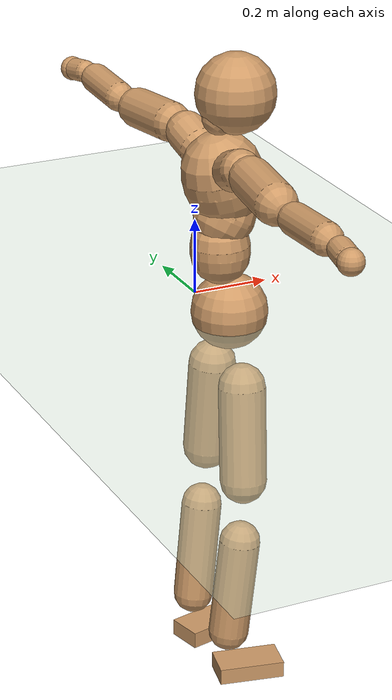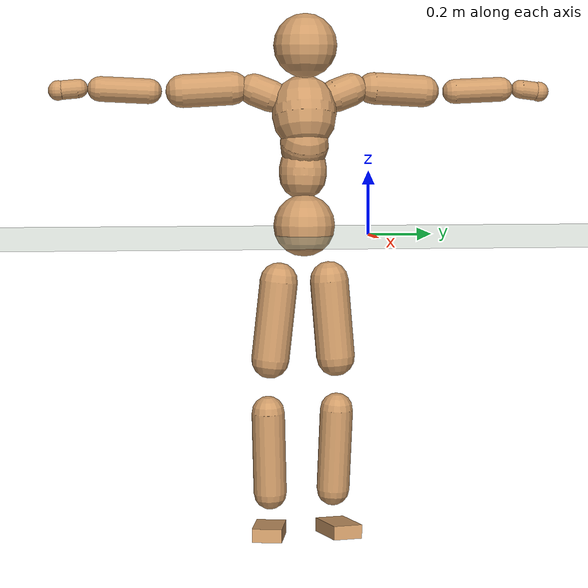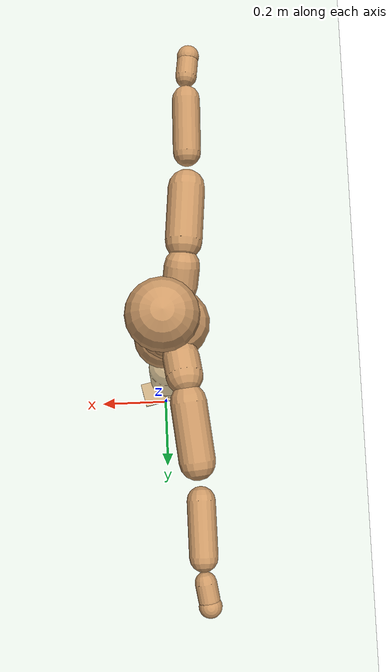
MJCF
<mujoco model="humanoid">
  <compiler coordinate="local" angle="radian"/>
  <default>
    <joint damping="0.0" armature="0.01" stiffness="0.0" limited="true"/>
    <geom conaffinity="1" condim="3" contype="7" margin="0.001" rgba="0.8 0.6 .4 1"/>
  </default>
  <asset>
    <texture type="skybox" builtin="gradient" rgb1=".4 .5 .6" rgb2="0 0 0" width="100" height="100"/>
    <texture builtin="flat" height="1278" mark="cross" markrgb="1 1 1" name="texgeom" random="0.01" rgb1="0.8 0.6 0.4" rgb2="0.8 0.6 0.4" type="cube" width="127"/>
    <texture builtin="checker" height="100" name="texplane" rgb1="0 0 0" rgb2="0.8 0.8 0.8" type="2d" width="100"/>
    <material name="MatPlane" reflectance="0.5" shininess="1" specular="1" texrepeat="60 60" texture="texplane"/>
    <material name="geom" texture="texgeom" texuniform="true"/>
  </asset>
  <worldbody>
    <light cutoff="100" diffuse="1 1 1" dir="-0 0 -1.3" directional="true" exponent="1" pos="0 0 1.3" specular=".1 .1 .1"/>
    <geom conaffinity="1" condim="3" name="floor" pos="0 0 0" rgba="0.8 0.9 0.8 1" size="100 100 .2" type="plane" material="MatPlane"/>
    <body name="Pelvis" pos="-0.0016 -0.2029 0.0297">
      <freejoint name="Pelvis"/>
      <geom type="sphere" contype="1" conaffinity="1" density="500" size="0.0973" pos="0.0000 0.0000 0.0000" name="Pelvis"/>
      <body name="L_Hip" pos="-0.0057 0.0735 -0.0931">
        <joint name="L_Hip_x" type="hinge" pos="0 0 0" axis="1 0 0" stiffness="800" damping="80" armature="0.02" range="-180.0000 180.0000"/>
        <joint name="L_Hip_y" type="hinge" pos="0 0 0" axis="0 1 0" stiffness="800" damping="80" armature="0.02" range="-180.0000 180.0000"/>
        <joint name="L_Hip_z" type="hinge" pos="0 0 0" axis="0 0 1" stiffness="800" damping="80" armature="0.02" range="-180.0000 180.0000"/>
        <geom type="capsule" contype="1" conaffinity="1" density="500" fromto="-0.0020 0.0071 -0.0811 -0.0080 0.0283 -0.3244" size="0.0607" name="L_Hip"/>
        <body name="L_Knee" pos="-0.01 0.0354 -0.4056">
          <joint name="L_Knee_x" type="hinge" pos="0 0 0" axis="1 0 0" stiffness="800" damping="80" armature="0.02" range="-180.0000 180.0000"/>
          <joint name="L_Knee_y" type="hinge" pos="0 0 0" axis="0 1 0" stiffness="800" damping="80" armature="0.02" range="-180.0000 180.0000"/>
          <joint name="L_Knee_z" type="hinge" pos="0 0 0" axis="0 0 1" stiffness="800" damping="80" armature="0.02" range="-180.0000 180.0000"/>
          <geom type="capsule" contype="1" conaffinity="1" density="500" fromto="-0.0092 -0.0023 -0.0867 -0.0369 -0.0092 -0.3470" size="0.052" name="L_Knee"/>
          <body name="L_Ankle" pos="-0.0461 -0.0115 -0.4337">
            <joint name="L_Ankle_x" type="hinge" pos="0 0 0" axis="1 0 0" stiffness="800" damping="80" armature="0.02" range="-180.0000 180.0000"/>
            <joint name="L_Ankle_y" type="hinge" pos="0 0 0" axis="0 1 0" stiffness="800" damping="80" armature="0.02" range="-180.0000 180.0000"/>
            <joint name="L_Ankle_z" type="hinge" pos="0 0 0" axis="0 0 1" stiffness="800" damping="80" armature="0.02" range="-180.0000 180.0000"/>
            <geom type="box" contype="1" conaffinity="1" density="500" pos="0.0588 0.0134 -0.0306" size="0.082 0.0466 0.0218" quat="0.9937 0.0000 0.0000 0.1117" name="L_Ankle"/>
            <body name="L_Toe" pos="0.1176 0.0268 -0.0612">
              <joint name="L_Toe_x" type="hinge" pos="0 0 0" axis="1 0 0" stiffness="500" damping="50" armature="0.02" range="-180.0000 180.0000"/>
              <joint name="L_Toe_y" type="hinge" pos="0 0 0" axis="0 1 0" stiffness="500" damping="50" armature="0.02" range="-180.0000 180.0000"/>
              <joint name="L_Toe_z" type="hinge" pos="0 0 0" axis="0 0 1" stiffness="500" damping="50" armature="0.02" range="-180.0000 180.0000"/>
              <geom type="box" contype="1" conaffinity="1" density="500" pos="0.0000 0.0000 0.0301" size="0.001 0.0023 0.0011" quat="0.9930 0.0000 0.0000 0.1178" name="L_Toe"/>
            </body>
          </body>
        </body>
      </body>
      <body name="R_Hip" pos="-0.0011 -0.0715 -0.0934">
        <joint name="R_Hip_x" type="hinge" pos="0 0 0" axis="1 0 0" stiffness="800" damping="80" armature="0.02" range="-180.0000 180.0000"/>
        <joint name="R_Hip_y" type="hinge" pos="0 0 0" axis="0 1 0" stiffness="800" damping="80" armature="0.02" range="-180.0000 180.0000"/>
        <joint name="R_Hip_z" type="hinge" pos="0 0 0" axis="0 0 1" stiffness="800" damping="80" armature="0.02" range="-180.0000 180.0000"/>
        <geom type="capsule" contype="1" conaffinity="1" density="500" fromto="-0.0024 -0.0087 -0.0824 -0.0095 -0.0348 -0.3295" size="0.0598" name="R_Hip"/>
        <body name="R_Knee" pos="-0.0119 -0.0435 -0.4119">
          <joint name="R_Knee_x" type="hinge" pos="0 0 0" axis="1 0 0" stiffness="800" damping="80" armature="0.02" range="-180.0000 180.0000"/>
          <joint name="R_Knee_y" type="hinge" pos="0 0 0" axis="0 1 0" stiffness="800" damping="80" armature="0.02" range="-180.0000 180.0000"/>
          <joint name="R_Knee_z" type="hinge" pos="0 0 0" axis="0 0 1" stiffness="800" damping="80" armature="0.02" range="-180.0000 180.0000"/>
          <geom type="capsule" contype="1" conaffinity="1" density="500" fromto="-0.0086 0.0030 -0.0869 -0.0344 0.0121 -0.3477" size="0.0523" name="R_Knee"/>
          <body name="R_Ankle" pos="-0.043 0.0151 -0.4347">
            <joint name="R_Ankle_x" type="hinge" pos="0 0 0" axis="1 0 0" stiffness="800" damping="80" armature="0.02" range="-180.0000 180.0000"/>
            <joint name="R_Ankle_y" type="hinge" pos="0 0 0" axis="0 1 0" stiffness="800" damping="80" armature="0.02" range="-180.0000 180.0000"/>
            <joint name="R_Ankle_z" type="hinge" pos="0 0 0" axis="0 0 1" stiffness="800" damping="80" armature="0.02" range="-180.0000 180.0000"/>
            <geom type="box" contype="1" conaffinity="1" density="500" pos="0.0608 -0.0124 -0.0262" size="0.0847 0.0469 0.0213" quat="0.9949 0.0000 0.0000 -0.1004" name="R_Ankle"/>
            <body name="R_Toe" pos="0.1216 -0.0248 -0.0524">
              <joint name="R_Toe_x" type="hinge" pos="0 0 0" axis="1 0 0" stiffness="500" damping="50" armature="0.02" range="-180.0000 180.0000"/>
              <joint name="R_Toe_y" type="hinge" pos="0 0 0" axis="0 1 0" stiffness="500" damping="50" armature="0.02" range="-180.0000 180.0000"/>
              <joint name="R_Toe_z" type="hinge" pos="0 0 0" axis="0 0 1" stiffness="500" damping="50" armature="0.02" range="-180.0000 180.0000"/>
              <geom type="box" contype="1" conaffinity="1" density="500" pos="0.0000 0.0000 0.0284" size="0.0009 0.0023 0.0012" quat="0.9958 0.0000 0.0000 -0.0911" name="R_Toe"/>
            </body>
          </body>
        </body>
      </body>
      <body name="Torso" pos="-0.0259 -0.0027 0.107">
        <joint name="Torso_x" type="hinge" pos="0 0 0" axis="1 0 0" stiffness="1000" damping="100" armature="0.02" range="-180.0000 180.0000"/>
        <joint name="Torso_y" type="hinge" pos="0 0 0" axis="0 1 0" stiffness="1000" damping="100" armature="0.02" range="-180.0000 180.0000"/>
        <joint name="Torso_z" type="hinge" pos="0 0 0" axis="0 0 1" stiffness="1000" damping="100" armature="0.02" range="-180.0000 180.0000"/>
        <geom type="capsule" contype="1" conaffinity="1" density="500" fromto="-0.0009 0.0024 0.0733 -0.0006 0.0016 0.0489" size="0.0751" name="Torso"/>
        <body name="Spine" pos="-0.0015 0.004 0.1222">
          <joint name="Spine_x" type="hinge" pos="0 0 0" axis="1 0 0" stiffness="1000" damping="100" armature="0.02" range="-180.0000 180.0000"/>
          <joint name="Spine_y" type="hinge" pos="0 0 0" axis="0 1 0" stiffness="1000" damping="100" armature="0.02" range="-180.0000 180.0000"/>
          <joint name="Spine_z" type="hinge" pos="0 0 0" axis="0 0 1" stiffness="1000" damping="100" armature="0.02" range="-180.0000 180.0000"/>
          <geom type="capsule" contype="1" conaffinity="1" density="500" fromto="0.0173 0.0012 0.0299 0.0115 0.0008 0.0199" size="0.0766" name="Spine"/>
          <body name="Chest" pos="0.0289 0.0019 0.0498">
            <joint name="Chest_x" type="hinge" pos="0 0 0" axis="1 0 0" stiffness="1000" damping="100" armature="0.02" range="-180.0000 180.0000"/>
            <joint name="Chest_y" type="hinge" pos="0 0 0" axis="0 1 0" stiffness="1000" damping="100" armature="0.02" range="-180.0000 180.0000"/>
            <joint name="Chest_z" type="hinge" pos="0 0 0" axis="0 0 1" stiffness="1000" damping="100" armature="0.02" range="-180.0000 180.0000"/>
            <geom type="capsule" contype="1" conaffinity="1" density="500" fromto="-0.0240 -0.0012 0.0902 -0.0160 -0.0008 0.0601" size="0.1011" name="Chest"/>
            <body name="Neck" pos="-0.0432 -0.0039 0.2133">
              <joint name="Neck_x" type="hinge" pos="0 0 0" axis="1 0 0" stiffness="500" damping="50" armature="0.02" range="-180.0000 180.0000"/>
              <joint name="Neck_y" type="hinge" pos="0 0 0" axis="0 1 0" stiffness="500" damping="50" armature="0.02" range="-180.0000 180.0000"/>
              <joint name="Neck_z" type="hinge" pos="0 0 0" axis="0 0 1" stiffness="500" damping="50" armature="0.02" range="-180.0000 180.0000"/>
              <geom type="capsule" contype="1" conaffinity="1" density="500" fromto="0.0111 0.0004 0.0138 0.0445 0.0017 0.0551" size="0.043" name="Neck"/>
              <body name="Head" pos="0.0556 0.0022 0.0689">
                <joint name="Head_x" type="hinge" pos="0 0 0" axis="1 0 0" stiffness="500" damping="50" armature="0.02" range="-180.0000 180.0000"/>
                <joint name="Head_y" type="hinge" pos="0 0 0" axis="0 1 0" stiffness="500" damping="50" armature="0.02" range="-180.0000 180.0000"/>
                <joint name="Head_z" type="hinge" pos="0 0 0" axis="0 0 1" stiffness="500" damping="50" armature="0.02" range="-180.0000 180.0000"/>
                <geom type="sphere" contype="1" conaffinity="1" density="500" size="0.1004" pos="0.0000 0.0000 0.0000" name="Head"/>
              </body>
            </body>
            <body name="L_Thorax" pos="-0.0363 0.082 0.1197">
              <joint name="L_Thorax_x" type="hinge" pos="0 0 0" axis="1 0 0" stiffness="500" damping="50" armature="0.02" range="-180.0000 180.0000"/>
              <joint name="L_Thorax_y" type="hinge" pos="0 0 0" axis="0 1 0" stiffness="500" damping="50" armature="0.02" range="-180.0000 180.0000"/>
              <joint name="L_Thorax_z" type="hinge" pos="0 0 0" axis="0 0 1" stiffness="500" damping="50" armature="0.02" range="-180.0000 180.0000"/>
              <geom type="capsule" contype="1" conaffinity="1" density="500" fromto="-0.0022 0.0175 0.0067 -0.0090 0.0698 0.0269" size="0.052" name="L_Thorax"/>
              <body name="L_Shoulder" pos="-0.0112 0.0873 0.0337">
                <joint name="L_Shoulder_x" type="hinge" pos="0 0 0" axis="1 0 0" stiffness="500" damping="50" armature="0.02" range="-720.0000 720.0000"/>
                <joint name="L_Shoulder_y" type="hinge" pos="0 0 0" axis="0 1 0" stiffness="500" damping="50" armature="0.02" range="-720.0000 720.0000"/>
                <joint name="L_Shoulder_z" type="hinge" pos="0 0 0" axis="0 0 1" stiffness="500" damping="50" armature="0.02" range="-720.0000 720.0000"/>
                <geom type="capsule" contype="1" conaffinity="1" density="500" fromto="-0.0060 0.0542 -0.0028 -0.0242 0.2167 -0.0114" size="0.0509" name="L_Shoulder"/>
                <body name="L_Elbow" pos="-0.0302 0.2708 -0.0142">
                  <joint name="L_Elbow_x" type="hinge" pos="0 0 0" axis="1 0 0" stiffness="500" damping="50" armature="0.02" range="-720.0000 720.0000"/>
                  <joint name="L_Elbow_y" type="hinge" pos="0 0 0" axis="0 1 0" stiffness="500" damping="50" armature="0.02" range="-720.0000 720.0000"/>
                  <joint name="L_Elbow_z" type="hinge" pos="0 0 0" axis="0 0 1" stiffness="500" damping="50" armature="0.02" range="-720.0000 720.0000"/>
                  <geom type="capsule" contype="1" conaffinity="1" density="500" fromto="-0.0003 0.0498 0.0023 -0.0010 0.1992 0.0093" size="0.0389" name="L_Elbow"/>
                  <body name="L_Wrist" pos="-0.0013 0.249 0.0116">
                    <joint name="L_Wrist_x" type="hinge" pos="0 0 0" axis="1 0 0" stiffness="300" damping="30" armature="0.02" range="-180.0000 180.0000"/>
                    <joint name="L_Wrist_y" type="hinge" pos="0 0 0" axis="0 1 0" stiffness="300" damping="30" armature="0.02" range="-180.0000 180.0000"/>
                    <joint name="L_Wrist_z" type="hinge" pos="0 0 0" axis="0 0 1" stiffness="300" damping="30" armature="0.02" range="-180.0000 180.0000"/>
                    <geom type="capsule" contype="1" conaffinity="1" density="500" fromto="-0.0026 0.0157 -0.0019 -0.0105 0.0628 -0.0077" size="0.0296" name="L_Wrist"/>
                    <body name="L_Hand" pos="-0.0131 0.0785 -0.0096">
                      <joint name="L_Hand_x" type="hinge" pos="0 0 0" axis="1 0 0" stiffness="300" damping="30" armature="0.02" range="-180.0000 180.0000"/>
                      <joint name="L_Hand_y" type="hinge" pos="0 0 0" axis="0 1 0" stiffness="300" damping="30" armature="0.02" range="-180.0000 180.0000"/>
                      <joint name="L_Hand_z" type="hinge" pos="0 0 0" axis="0 0 1" stiffness="300" damping="30" armature="0.02" range="-180.0000 180.0000"/>
                      <geom type="sphere" contype="1" conaffinity="1" density="500" size="0.0316" pos="0.0000 0.0000 0.0000" name="L_Hand"/>
                    </body>
                  </body>
                </body>
              </body>
            </body>
            <body name="R_Thorax" pos="-0.0403 -0.0838 0.1179">
              <joint name="R_Thorax_x" type="hinge" pos="0 0 0" axis="1 0 0" stiffness="500" damping="50" armature="0.02" range="-180.0000 180.0000"/>
              <joint name="R_Thorax_y" type="hinge" pos="0 0 0" axis="0 1 0" stiffness="500" damping="50" armature="0.02" range="-180.0000 180.0000"/>
              <joint name="R_Thorax_z" type="hinge" pos="0 0 0" axis="0 0 1" stiffness="500" damping="50" armature="0.02" range="-180.0000 180.0000"/>
              <geom type="capsule" contype="1" conaffinity="1" density="500" fromto="-0.0024 -0.0177 0.0070 -0.0096 -0.0709 0.0281" size="0.0506" name="R_Thorax"/>
              <body name="R_Shoulder" pos="-0.012 -0.0886 0.0351">
                <joint name="R_Shoulder_x" type="hinge" pos="0 0 0" axis="1 0 0" stiffness="500" damping="50" armature="0.02" range="-720.0000 720.0000"/>
                <joint name="R_Shoulder_y" type="hinge" pos="0 0 0" axis="0 1 0" stiffness="500" damping="50" armature="0.02" range="-720.0000 720.0000"/>
                <joint name="R_Shoulder_z" type="hinge" pos="0 0 0" axis="0 0 1" stiffness="500" damping="50" armature="0.02" range="-720.0000 720.0000"/>
                <geom type="capsule" contype="1" conaffinity="1" density="500" fromto="-0.0047 -0.0517 -0.0030 -0.0188 -0.2068 -0.0121" size="0.0526" name="R_Shoulder"/>
                <body name="R_Elbow" pos="-0.0235 -0.2585 -0.0151">
                  <joint name="R_Elbow_x" type="hinge" pos="0 0 0" axis="1 0 0" stiffness="500" damping="50" armature="0.02" range="-720.0000 720.0000"/>
                  <joint name="R_Elbow_y" type="hinge" pos="0 0 0" axis="0 1 0" stiffness="500" damping="50" armature="0.02" range="-720.0000 720.0000"/>
                  <joint name="R_Elbow_z" type="hinge" pos="0 0 0" axis="0 0 1" stiffness="500" damping="50" armature="0.02" range="-720.0000 720.0000"/>
                  <geom type="capsule" contype="1" conaffinity="1" density="500" fromto="-0.0008 -0.0512 0.0024 -0.0033 -0.2049 0.0095" size="0.0395" name="R_Elbow"/>
                  <body name="R_Wrist" pos="-0.0041 -0.2562 0.0119">
                    <joint name="R_Wrist_x" type="hinge" pos="0 0 0" axis="1 0 0" stiffness="300" damping="30" armature="0.02" range="-180.0000 180.0000"/>
                    <joint name="R_Wrist_y" type="hinge" pos="0 0 0" axis="0 1 0" stiffness="300" damping="30" armature="0.02" range="-180.0000 180.0000"/>
                    <joint name="R_Wrist_z" type="hinge" pos="0 0 0" axis="0 0 1" stiffness="300" damping="30" armature="0.02" range="-180.0000 180.0000"/>
                    <geom type="capsule" contype="1" conaffinity="1" density="500" fromto="-0.0020 -0.0157 -0.0014 -0.0081 -0.0626 -0.0057" size="0.0302" name="R_Wrist"/>
                    <body name="R_Hand" pos="-0.0101 -0.0783 -0.0071">
                      <joint name="R_Hand_x" type="hinge" pos="0 0 0" axis="1 0 0" stiffness="300" damping="30" armature="0.02" range="-180.0000 180.0000"/>
                      <joint name="R_Hand_y" type="hinge" pos="0 0 0" axis="0 1 0" stiffness="300" damping="30" armature="0.02" range="-180.0000 180.0000"/>
                      <joint name="R_Hand_z" type="hinge" pos="0 0 0" axis="0 0 1" stiffness="300" damping="30" armature="0.02" range="-180.0000 180.0000"/>
                      <geom type="sphere" contype="1" conaffinity="1" density="500" size="0.0316" pos="0.0000 0.0000 0.0000" name="R_Hand"/>
                    </body>
                  </body>
                </body>
              </body>
            </body>
          </body>
        </body>
      </body>
    </body>
  </worldbody>
  <actuator>
    <motor name="L_Hip_x" joint="L_Hip_x" gear="500"/>
    <motor name="L_Hip_y" joint="L_Hip_y" gear="500"/>
    <motor name="L_Hip_z" joint="L_Hip_z" gear="500"/>
    <motor name="L_Knee_x" joint="L_Knee_x" gear="500"/>
    <motor name="L_Knee_y" joint="L_Knee_y" gear="500"/>
    <motor name="L_Knee_z" joint="L_Knee_z" gear="500"/>
    <motor name="L_Ankle_x" joint="L_Ankle_x" gear="500"/>
    <motor name="L_Ankle_y" joint="L_Ankle_y" gear="500"/>
    <motor name="L_Ankle_z" joint="L_Ankle_z" gear="500"/>
    <motor name="L_Toe_x" joint="L_Toe_x" gear="500"/>
    <motor name="L_Toe_y" joint="L_Toe_y" gear="500"/>
    <motor name="L_Toe_z" joint="L_Toe_z" gear="500"/>
    <motor name="R_Hip_x" joint="R_Hip_x" gear="500"/>
    <motor name="R_Hip_y" joint="R_Hip_y" gear="500"/>
    <motor name="R_Hip_z" joint="R_Hip_z" gear="500"/>
    <motor name="R_Knee_x" joint="R_Knee_x" gear="500"/>
    <motor name="R_Knee_y" joint="R_Knee_y" gear="500"/>
    <motor name="R_Knee_z" joint="R_Knee_z" gear="500"/>
    <motor name="R_Ankle_x" joint="R_Ankle_x" gear="500"/>
    <motor name="R_Ankle_y" joint="R_Ankle_y" gear="500"/>
    <motor name="R_Ankle_z" joint="R_Ankle_z" gear="500"/>
    <motor name="R_Toe_x" joint="R_Toe_x" gear="500"/>
    <motor name="R_Toe_y" joint="R_Toe_y" gear="500"/>
    <motor name="R_Toe_z" joint="R_Toe_z" gear="500"/>
    <motor name="Torso_x" joint="Torso_x" gear="500"/>
    <motor name="Torso_y" joint="Torso_y" gear="500"/>
    <motor name="Torso_z" joint="Torso_z" gear="500"/>
    <motor name="Spine_x" joint="Spine_x" gear="500"/>
    <motor name="Spine_y" joint="Spine_y" gear="500"/>
    <motor name="Spine_z" joint="Spine_z" gear="500"/>
    <motor name="Chest_x" joint="Chest_x" gear="500"/>
    <motor name="Chest_y" joint="Chest_y" gear="500"/>
    <motor name="Chest_z" joint="Chest_z" gear="500"/>
    <motor name="Neck_x" joint="Neck_x" gear="500"/>
    <motor name="Neck_y" joint="Neck_y" gear="500"/>
    <motor name="Neck_z" joint="Neck_z" gear="500"/>
    <motor name="Head_x" joint="Head_x" gear="500"/>
    <motor name="Head_y" joint="Head_y" gear="500"/>
    <motor name="Head_z" joint="Head_z" gear="500"/>
    <motor name="L_Thorax_x" joint="L_Thorax_x" gear="500"/>
    <motor name="L_Thorax_y" joint="L_Thorax_y" gear="500"/>
    <motor name="L_Thorax_z" joint="L_Thorax_z" gear="500"/>
    <motor name="L_Shoulder_x" joint="L_Shoulder_x" gear="500"/>
    <motor name="L_Shoulder_y" joint="L_Shoulder_y" gear="500"/>
    <motor name="L_Shoulder_z" joint="L_Shoulder_z" gear="500"/>
    <motor name="L_Elbow_x" joint="L_Elbow_x" gear="500"/>
    <motor name="L_Elbow_y" joint="L_Elbow_y" gear="500"/>
    <motor name="L_Elbow_z" joint="L_Elbow_z" gear="500"/>
    <motor name="L_Wrist_x" joint="L_Wrist_x" gear="500"/>
    <motor name="L_Wrist_y" joint="L_Wrist_y" gear="500"/>
    <motor name="L_Wrist_z" joint="L_Wrist_z" gear="500"/>
    <motor name="L_Hand_x" joint="L_Hand_x" gear="500"/>
    <motor name="L_Hand_y" joint="L_Hand_y" gear="500"/>
    <motor name="L_Hand_z" joint="L_Hand_z" gear="500"/>
    <motor name="R_Thorax_x" joint="R_Thorax_x" gear="500"/>
    <motor name="R_Thorax_y" joint="R_Thorax_y" gear="500"/>
    <motor name="R_Thorax_z" joint="R_Thorax_z" gear="500"/>
    <motor name="R_Shoulder_x" joint="R_Shoulder_x" gear="500"/>
    <motor name="R_Shoulder_y" joint="R_Shoulder_y" gear="500"/>
    <motor name="R_Shoulder_z" joint="R_Shoulder_z" gear="500"/>
    <motor name="R_Elbow_x" joint="R_Elbow_x" gear="500"/>
    <motor name="R_Elbow_y" joint="R_Elbow_y" gear="500"/>
    <motor name="R_Elbow_z" joint="R_Elbow_z" gear="500"/>
    <motor name="R_Wrist_x" joint="R_Wrist_x" gear="500"/>
    <motor name="R_Wrist_y" joint="R_Wrist_y" gear="500"/>
    <motor name="R_Wrist_z" joint="R_Wrist_z" gear="500"/>
    <motor name="R_Hand_x" joint="R_Hand_x" gear="500"/>
    <motor name="R_Hand_y" joint="R_Hand_y" gear="500"/>
    <motor name="R_Hand_z" joint="R_Hand_z" gear="500"/>
  </actuator>
  <contact>
    <exclude body1="Torso" body2="Chest"/>
    <exclude body1="Head" body2="Chest"/>
    <exclude body1="R_Knee" body2="R_Toe"/>
    <exclude body1="R_Knee" body2="L_Ankle"/>
    <exclude body1="R_Knee" body2="L_Toe"/>
    <exclude body1="L_Knee" body2="L_Toe"/>
    <exclude body1="L_Knee" body2="R_Ankle"/>
    <exclude body1="L_Knee" body2="R_Toe"/>
    <exclude body1="L_Shoulder" body2="Chest"/>
    <exclude body1="R_Shoulder" body2="Chest"/>
  </contact>
  <sensor/>
  <size njmax="700" nconmax="700"/>
</mujoco>
